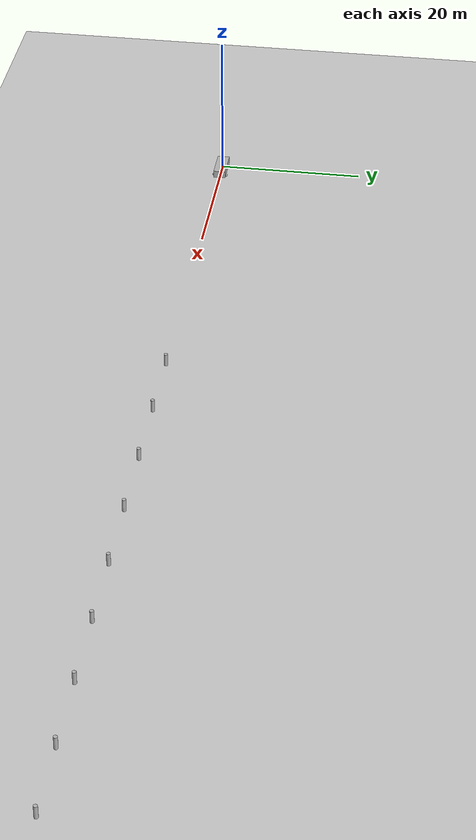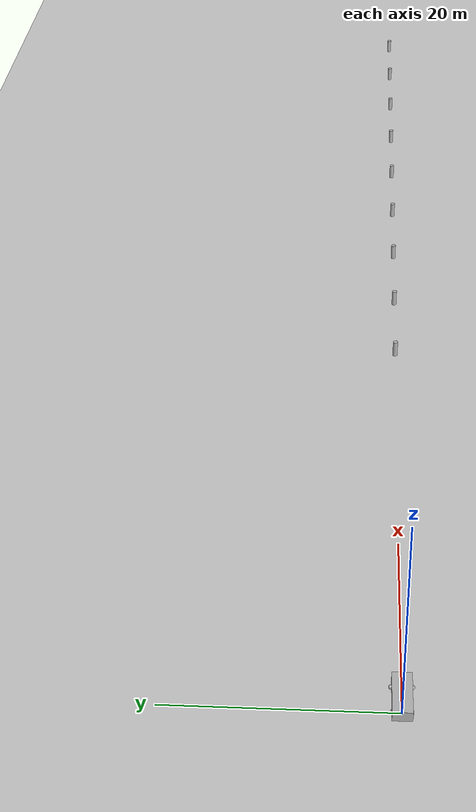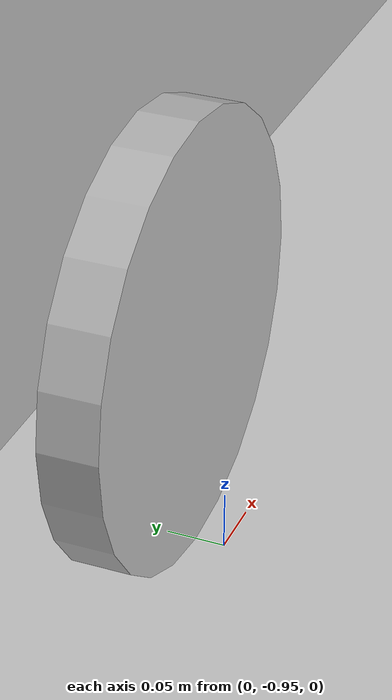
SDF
<?xml version="1.0"?>
<sdf version="1.4">
  <world name="default">
    <gui>
      <camera name="user_camera">
        <pose>-7.35 -3.59 39.73 0 1.417 0.124</pose>
      </camera>
    </gui>

    <include>
      <uri>model://ground_plane</uri>
    </include>

    <include>
      <uri>model://sun</uri>
    </include>

    <include>
      <name>lgp_pedestrian_0</name>
      <pose>50 0 0 0 0 3.1415</pose>
      <uri>model://lgp_pedestrian</uri>
      <plugin name="lgp_pedestrian_0" filename="liblgp_pedestrian_gazebo_plugin.so"/>
    </include>

    <include>
      <name>lgp_pedestrian_1</name>
      <pose>60 0 0 0 0 3.1415</pose>
      <uri>model://lgp_pedestrian</uri>
      <plugin name="lgp_pedestrian_1" filename="liblgp_pedestrian_gazebo_plugin.so"/>
    </include>

    <include>
      <name>lgp_pedestrian_2</name>
      <pose>70 0 0 0 0 3.1415</pose>
      <uri>model://lgp_pedestrian</uri>
      <plugin name="lgp_pedestrian_2" filename="liblgp_pedestrian_gazebo_plugin.so"/>
    </include>

    <include>
      <name>lgp_pedestrian_3</name>
      <pose>80 0 0 0 0 3.1415</pose>
      <uri>model://lgp_pedestrian</uri>
      <plugin name="lgp_pedestrian_3" filename="liblgp_pedestrian_gazebo_plugin.so"/>
    </include>

    <include>
      <name>lgp_pedestrian_4</name>
      <pose>90 0 0 0 0 3.1415</pose>
      <uri>model://lgp_pedestrian</uri>
      <plugin name="lgp_pedestrian_4" filename="liblgp_pedestrian_gazebo_plugin.so"/>
    </include>

    <include>
      <name>lgp_pedestrian_5</name>
      <pose>100 0 0 0 0 3.1415</pose>
      <uri>model://lgp_pedestrian</uri>
      <plugin name="lgp_pedestrian_5" filename="liblgp_pedestrian_gazebo_plugin.so"/>
    </include>

    <include>
      <name>lgp_pedestrian_6</name>
      <pose>110 0 0 0 0 3.1415</pose>
      <uri>model://lgp_pedestrian</uri>
      <plugin name="lgp_pedestrian_6" filename="liblgp_pedestrian_gazebo_plugin.so"/>
    </include>

    <include>
      <name>lgp_pedestrian_7</name>
      <pose>120 0 0 0 0 3.1415</pose>
      <uri>model://lgp_pedestrian</uri>
      <plugin name="lgp_pedestrian_7" filename="liblgp_pedestrian_gazebo_plugin.so"/>
    </include>

    <include>
      <name>lgp_pedestrian_8</name>
      <pose>130 0 0 0 0 3.1415</pose>
      <uri>model://lgp_pedestrian</uri>
      <plugin name="lgp_pedestrian_8" filename="liblgp_pedestrian_gazebo_plugin.so"/>
    </include>

    <include>
      <name>lgp_car</name>
      <uri>model://lgp_car</uri>
      <plugin name="lgp_car" filename="liblgp_car_gazebo_plugin.so"/>
    </include>

    </world>
</sdf>

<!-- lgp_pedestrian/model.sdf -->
<sdf version='1.4'>
  <model name="lgp_pedestrian">
        <static>false</static>

	<link name='chassis'>
            <pose>0.0 0 0.69 0 0 0</pose>

	      <inertial>
		<mass>70.0</mass>
	      </inertial>

            <collision name='collision'>
              <geometry>
                <cylinder>
              	  <radius>0.25</radius>
              	  <length>1.8</length>
            	</cylinder>
              </geometry>

                  <surface>
		    <friction>
		      <ode>
		        <mu>0.0</mu>
		        <mu2>0</mu2>
		      </ode>
		    </friction>
		  </surface>

            </collision>

            <visual name='visual'>
              <geometry>
		<cylinder>
              	  <radius>0.25</radius>
              	  <length>1.8</length>
            	</cylinder>
              </geometry>
            </visual>
          </link>

  </model>
</sdf>

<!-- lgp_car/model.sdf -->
<sdf version='1.4'>
  <model name="lgp_car">
        <static>false</static>

	<link name='chassis'>
            <pose>1.25 0 0.69 0 0 0</pose>

	      <inertial>
		<mass>100.0</mass>
	      </inertial>

            <collision name='collision'>
              <geometry>
                <box>
                  <size>4.3 1.7 1.0</size>
                </box>
              </geometry>

                  <surface>
		    <friction>
		      <ode>
		        <mu>0</mu>
		        <mu2>0</mu2>
		      </ode>
		    </friction>
		  </surface>

            </collision>

            <visual name='visual'>
              <geometry>
                <box>
                  <size>4.3 1.7 1.0</size>
                </box>
              </geometry>
            </visual>

             <collision name='caster_collision_left'>
		  <pose>1.4 0.9 -0.5 0 0 0</pose>
		    <geometry>
		      <sphere>
		      <radius>.19</radius>
		    </sphere>
		  </geometry>

		  <surface>
		    <friction>
		      <ode>
		        <mu>0</mu>
		        <mu2>0</mu2>
		        <slip1>0.0</slip1>
		        <slip2>0.0</slip2>
		      </ode>
		    </friction>
		  </surface>
		</collision>

		<visual name='caster_visual_left'>
		  <pose>1.4 0.9 -0.5 0 0 0</pose>
		  <geometry>
		    <sphere>
		      <radius>.19</radius>
		    </sphere>
		  </geometry>
		</visual>

                <collision name='caster_collision_right'>
		  <pose>1.4 -0.9 -0.5 0 0 0</pose>
		    <geometry>
		      <sphere>
		      <radius>.19</radius>
		    </sphere>
		  </geometry>

		  <surface>
		    <friction>
		      <ode>
		        <mu>0</mu>
		        <mu2>0</mu2>
		        <slip1>0.0</slip1>
		        <slip2>0.0</slip2>
		      </ode>
		    </friction>
		  </surface>
		</collision>

		<visual name='caster_visual_right'>
		  <pose>1.4 -0.9 -0.5 0 0 0</pose>
		  <geometry>
		    <sphere>
		      <radius>.19</radius>
		    </sphere>
		  </geometry>
		</visual>
          </link>

	<link name="left_wheel">
        <pose>0.0 0.9 0.19 0 1.5707 1.5707</pose>
		<collision name="collision">

		  <geometry>
		    <cylinder>
		      <radius>.19</radius>
		      <length>.05</length>
		    </cylinder>
		  </geometry>

                  <surface>
		    <friction>
		      <ode>
		        <mu>1000.00</mu>
		        <mu2>1000.00</mu2>
		      </ode>
		    </friction>
		  </surface>

		</collision>
		<visual name="visual">
		  <geometry>
		    <cylinder>
		      <radius>.19</radius>
		      <length>.05</length>
		    </cylinder>
		  </geometry>
		</visual>
     	 </link>

	<link name="right_wheel">
        <pose>0.0 -0.9 0.19 0 1.5707 1.5707</pose>
		<collision name="collision">
		  <geometry>
		    <cylinder>
		      <radius>.19</radius>
		      <length>.05</length>
		    </cylinder>
		  </geometry>
                  <surface>
		    <friction>
		      <ode>
		        <mu>1000.0</mu>
		        <mu2>1000.0</mu2>
		      </ode>
		    </friction>
		  </surface>

		</collision>
		<visual name="visual">
		  <geometry>
		    <cylinder>
		      <radius>.19</radius>
		      <length>.05</length>
		    </cylinder>
		  </geometry>
		</visual>
     	 </link>

	<joint type="revolute" name="left_wheel_hinge">
          <pose>0 0 -0.03 0 0 0</pose>
          <child>left_wheel</child>
          <parent>chassis</parent>
          <axis>
          <xyz>0 1 0</xyz>
          </axis>
      	</joint>

      	<joint type="revolute" name="right_wheel_hinge">
          <pose>0 0 0.03 0 0 0</pose>
          <child>right_wheel</child>
          <parent>chassis</parent>
          <axis>
          <xyz>0 1 0</xyz>
          </axis>
      	</joint>

  </model>
</sdf>
